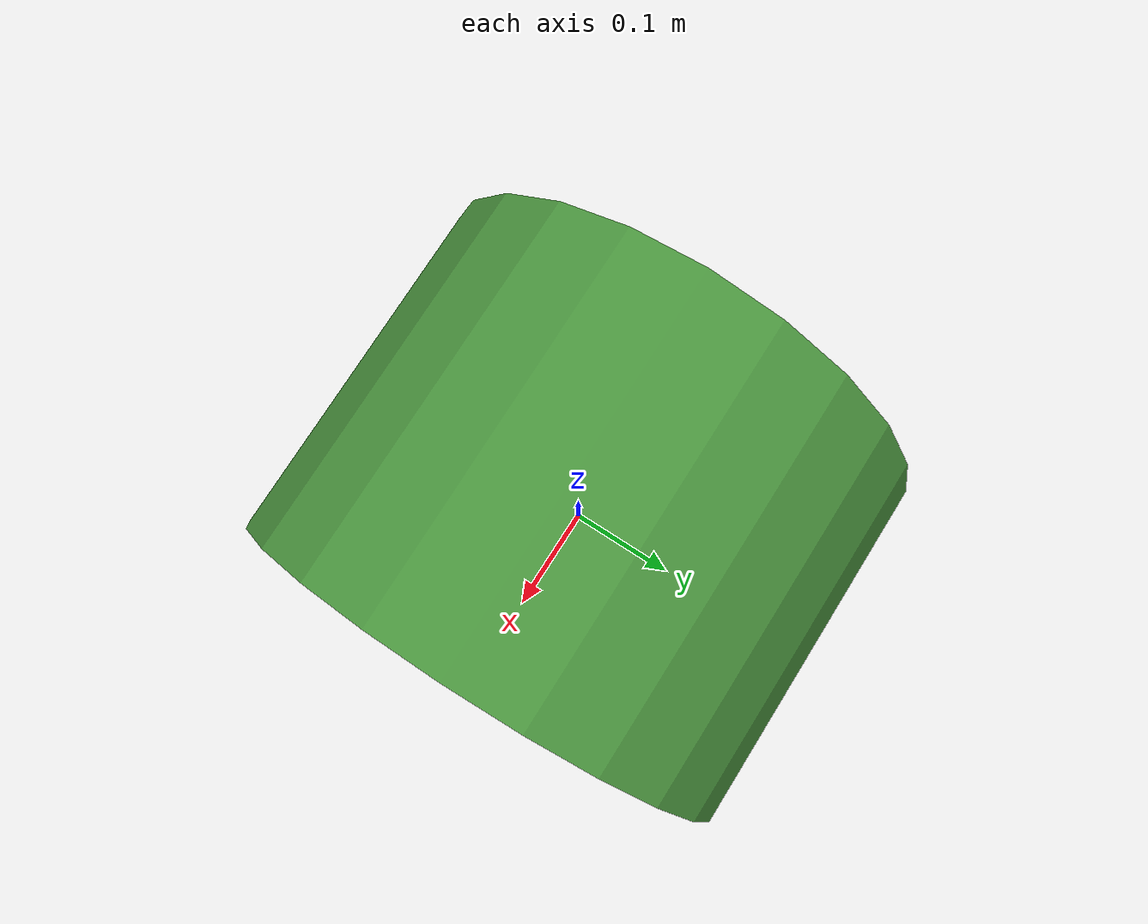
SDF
<?xml version='1.0'?>
<sdf version='1.6'>
  <model name='Mound_cyl'>
    <link name='link'>
      <pose frame=''>0 0 0 0 -0 0</pose>
      <inertial>
        <mass>1</mass>
        <inertia>
          <ixx>0.145833</ixx>
          <ixy>0</ixy>
          <ixz>0</ixz>
          <iyy>0.145833</iyy>
          <iyz>0</iyz>
          <izz>0.125</izz>
        </inertia>
        <pose frame=''>0 0 0 0 1.57 0</pose>
      </inertial>
      <self_collide>0</self_collide>
      <kinematic>0</kinematic>
      <gravity>1</gravity>
      <visual name='visual'>
        <geometry>
          <cylinder>
            <radius>0.25</radius>
            <length>0.34</length>
          </cylinder>
        </geometry>
        <material>
          <script>
            <uri>model://ground_plane/materials/scripts/my_ground_plane.material</uri>
            <uri>model://ground_plane/materials/textures</uri>
            <name>my_ground_plane/BigGrass</name>
          </script>
          <shader type='vertex'>
            <normal_map>__default__</normal_map>
          </shader>
        </material>
        <pose frame=''>0 0 0 0 1.57 0</pose>
        <cast_shadows>1</cast_shadows>
        <transparency>0</transparency>
      </visual>
      <collision name='collision'>
        <laser_retro>0</laser_retro>
        <max_contacts>10</max_contacts>
        <pose frame=''>0 0 0 0 1.57 0</pose>
        <geometry>
          <cylinder>
            <radius>0.25</radius>
            <length>0.34</length>
          </cylinder>
        </geometry>
        <surface>
          <friction>
            <ode>
              <mu>0.99</mu>
              <mu2>0.99</mu2>
              <fdir1>0 0 0</fdir1>
              <slip1>0</slip1>
              <slip2>0</slip2>
            </ode>
            <torsional>
              <coefficient>1</coefficient>
              <patch_radius>0</patch_radius>
              <surface_radius>0</surface_radius>
              <use_patch_radius>1</use_patch_radius>
              <ode>
                <slip>0</slip>
              </ode>
            </torsional>
          </friction>
          <bounce>
            <restitution_coefficient>0</restitution_coefficient>
            <threshold>1e+06</threshold>
          </bounce>
          <contact>
            <collide_without_contact>0</collide_without_contact>
            <collide_without_contact_bitmask>1</collide_without_contact_bitmask>
            <collide_bitmask>1</collide_bitmask>
            <ode>
              <soft_cfm>0</soft_cfm>
              <soft_erp>0.2</soft_erp>
              <kp>1e+13</kp>
              <kd>1</kd>
              <max_vel>0.01</max_vel>
              <min_depth>0</min_depth>
            </ode>
            <bullet>
              <split_impulse>1</split_impulse>
              <split_impulse_penetration_threshold>-0.01</split_impulse_penetration_threshold>
              <soft_cfm>0</soft_cfm>
              <soft_erp>0.2</soft_erp>
              <kp>1e+13</kp>
              <kd>1</kd>
            </bullet>
          </contact>
        </surface>
      </collision>
    </link>
    <static>0</static>
    <allow_auto_disable>1</allow_auto_disable>
  </model>
</sdf>
